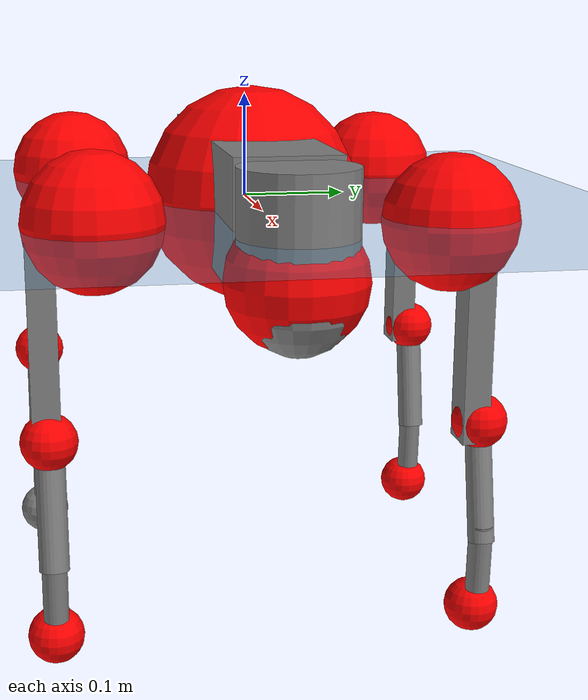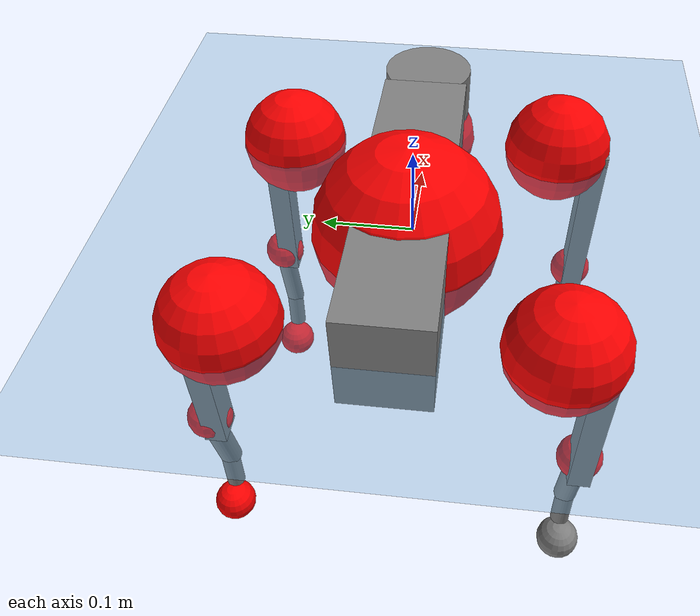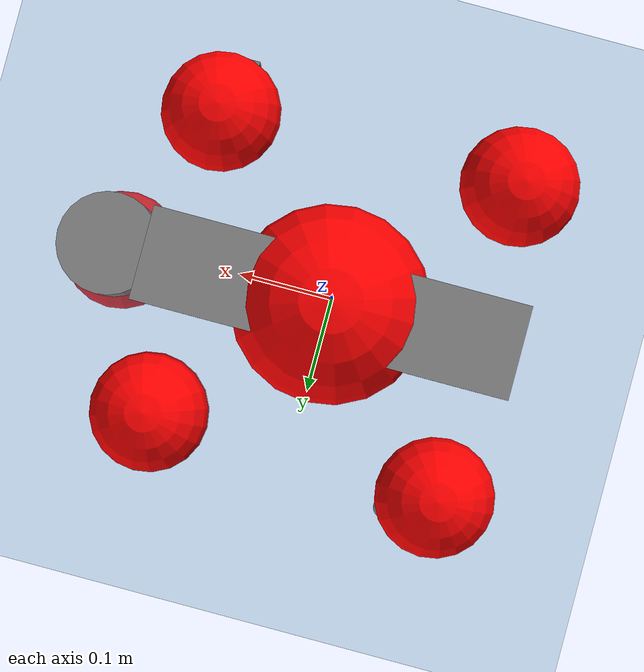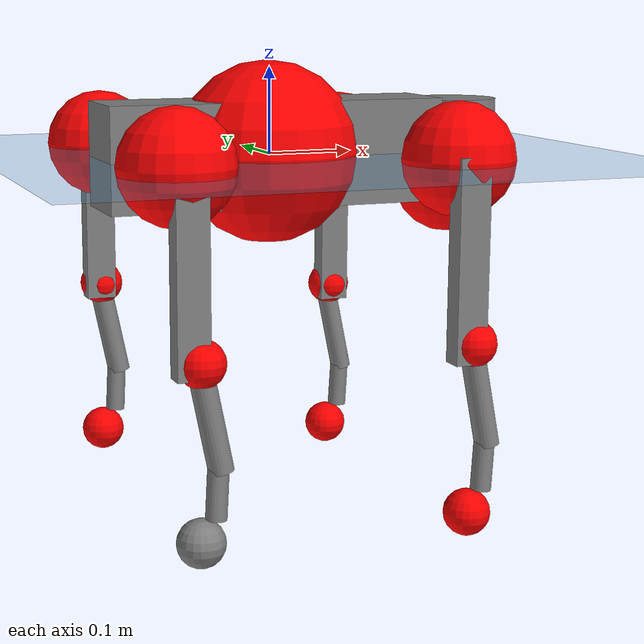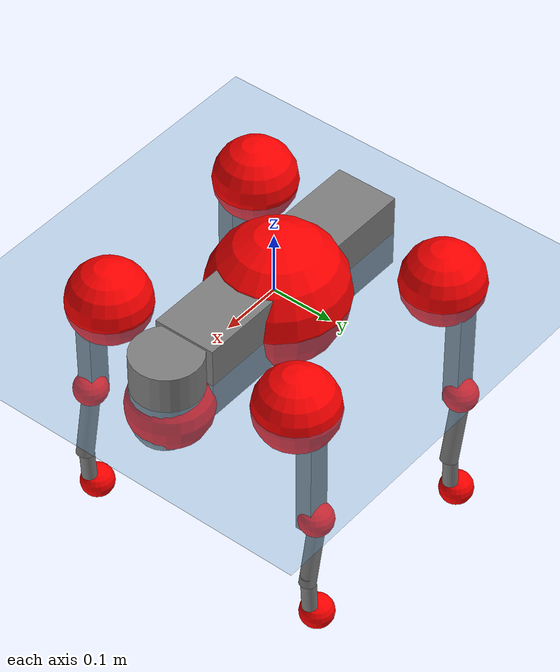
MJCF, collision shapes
<mujoco model="go2">
  <compiler angle="radian" assetdir="assets" balanceinertia="true" inertiafromgeom="false"/>

  <option timestep="0.005" density="1.2" viscosity="2e-05"/>

  <size nkey="1"/>

  <visual>
    <quality shadowsize="8192"/>
    <map shadowclip="0.5"/>
  </visual>

  <default>
    <default class="/">
      <geom contype="0" conaffinity="0" group="1" solref="-1000 -80"/>
      <site size="0.01 0.005 0.005" group="5"/>
      <general forcelimited="true" biastype="affine" gainprm="20" biasprm="0 -20 -0.5"/>
      <default class="go2">
        <joint armature="0.01" damping="0.01" frictionloss="0.2"/>
        <geom condim="1" margin="0.001"/>
        <default class="visual">
          <geom type="mesh" group="2"/>
        </default>
        <default class="collision">
          <geom group="3"/>
          <default class="foot">
            <geom size="0.022 0 0" condim="6" priority="1" friction="0.8 0.02 0.01" solimp="0.015 1 0.022"/>
          </default>
        </default>
        <default class="reward_collision_sphere">
          <geom group="5" rgba="1 0 0 1"/>
        </default>
      </default>
    </default>
  </default>

  <asset>
    <texture type="skybox" colorspace="auto" name="//unnamed_texture_0" builtin="gradient" rgb1="0.95 0.95 0.95" rgb2="0.95 0.95 0.95" width="100" height="600"/>
    <texture type="2d" colorspace="auto" name="texplane" builtin="checker" rgb1="0.345 0.575 0.748" rgb2="0.345 0.575 0.748" markrgb="1 1 1" width="512" height="512"/>
    <material name="MatPlane" class="/" texture="texplane" texuniform="true" texrepeat="2 2" specular="0.9"/>
    <material name="metal" class="/" rgba="0.9 0.95 0.95 1"/>
    <material name="black" class="/" rgba="0 0 0 1"/>
    <material name="white" class="/"/>
    <material name="gray" class="/" rgba="0.671705 0.692426 0.77427 1"/>
    <mesh name="base_0" class="/" file="base_0.obj"/>
    <mesh name="base_1" class="/" file="base_1.obj"/>
    <mesh name="base_2" class="/" file="base_2.obj"/>
    <mesh name="base_3" class="/" file="base_3.obj"/>
    <mesh name="base_4" class="/" file="base_4.obj"/>
    <mesh name="hip_0" class="/" file="hip_0.obj"/>
    <mesh name="hip_1" class="/" file="hip_1.obj"/>
    <mesh name="thigh_0" class="/" file="thigh_0.obj"/>
    <mesh name="thigh_1" class="/" file="thigh_1.obj"/>
    <mesh name="thigh_mirror_0" class="/" file="thigh_mirror_0.obj"/>
    <mesh name="thigh_mirror_1" class="/" file="thigh_mirror_1.obj"/>
    <mesh name="calf_0" class="/" file="calf_0.obj"/>
    <mesh name="calf_1" class="/" file="calf_1.obj"/>
    <mesh name="calf_mirror_0" class="/" file="calf_mirror_0.obj"/>
    <mesh name="calf_mirror_1" class="/" file="calf_mirror_1.obj"/>
    <mesh name="foot" class="/" file="foot.obj"/>
  </asset>

  <worldbody>
    <geom name="floor" class="/" size="100 100 0.125" type="plane" group="0" material="MatPlane"/>
    <light name="toplight_shadow" class="/" pos="0 0 5" dir="0.0990148 0.0990148 -0.990148" type="directional" ambient="0.04 0.04 0.04" diffuse="0.55 0.55 0.55" specular="0.12 0.12 0.12"/>
    <light name="toplight_fill" class="/" pos="0 0 5" dir="0.0990148 0.0990148 -0.990148" type="directional" castshadow="false" ambient="0.04 0.04 0.04" diffuse="0.3 0.3 0.3" specular="0.08 0.08 0.08"/>
    <body name="trunk" childclass="go2" pos="-0.00048294 0.00617486 0.00183606" quat="1 0.000118823 -2.12437e-05 6.4438e-05">
      <inertial pos="0.0168473 0.00687327 -0.00509489" quat="0.0441922 0.69205 -0.00896795 0.72044" mass="8.43184" diaginertia="0.0427518 0.639844 0.0148575"/>
      <joint name="//unnamed_joint_0" type="free" armature="0" damping="0" frictionloss="0"/>
      <geom name="//unnamed_geom_1" class="visual" material="black" mesh="base_0"/>
      <geom name="//unnamed_geom_2" class="visual" material="black" mesh="base_1"/>
      <geom name="//unnamed_geom_3" class="visual" material="black" mesh="base_2"/>
      <geom name="//unnamed_geom_4" class="visual" material="white" mesh="base_3"/>
      <geom name="//unnamed_geom_5" class="visual" material="gray" mesh="base_4"/>
      <geom name="trunk_1" class="collision" size="0.199542 0.0495938 0.0604674" type="box"/>
      <geom name="trunk_2" class="collision" size="0.0530415 0.0477374" pos="0.235573 0 0.00904338" type="cylinder"/>
      <geom name="trunk_3" class="collision" size="0.049859" pos="0.242186 0 -0.0542603"/>
      <geom name="//unnamed_geom_9" class="reward_collision_sphere" size="0.106083"/>
      <geom name="//unnamed_geom_10" class="reward_collision_sphere" size="0.0636498" pos="0.231441 0 -0.0406952"/>
      <site name="imu" pos="-0.0503733 -0.0177744 0.0690671" size="0.0106083"/>
      <camera name="track" pos="0 -2.90316 0" quat="0.707107 0.707107 0 0" mode="trackcom"/>
      <camera name="ego_camera" pos="0.257891 0 0.0406952" quat="-0.5 -0.5 0.5 0.5"/>
      <body name="FL_hip" pos="0.155211 0.0571222 -0.00840437" quat="0.999995 0.00283733 0.00119841 -0.0011851">
        <inertial pos="-0.00556945 0.00299735 -0.00311309" quat="0.498051 0.505929 0.50181 0.494134" mass="0.852956" diaginertia="0.000339821 0.00418678 0.000283467"/>
        <joint name="FL_hip_joint" pos="0 0 0" axis="0.999998 0.00165241 -0.000893835" range="-1.26026 0.985105" armature="0.00986615" damping="0.0382543" frictionloss="0.161301"/>
        <geom name="//unnamed_geom_11" class="visual" material="metal" mesh="hip_0"/>
        <geom name="//unnamed_geom_12" class="visual" material="gray" mesh="hip_1"/>
        <geom name="//unnamed_geom_13" class="collision" size="0.0487982 0.0212166" pos="0 0.116126 0" quat="0.707107 0.707107 0 0" type="cylinder"/>
        <geom name="//unnamed_geom_14" class="reward_collision_sphere" size="0.0636498" pos="0 0.101611 0"/>
        <body name="FL_thigh" pos="0.00178936 0.128224 -0.00096047" quat="0.999996 -0.000352648 0.0010234 0.00241697">
          <inertial pos="-0.00833636 -0.0363491 -0.0282403" quat="0.817214 0.058933 -0.0334612 0.572337" mass="1.37446" diaginertia="0.00240195 0.0382909 0.000547003"/>
          <joint name="FL_thigh_joint" pos="0 0 0" axis="-0.0288599 0.999476 -0.0146758" range="-1.62119 3.31519" armature="0.00701945" damping="0.0147189" frictionloss="0.198603"/>
          <geom name="//unnamed_geom_15" class="visual" material="metal" mesh="thigh_0"/>
          <geom name="//unnamed_geom_16" class="visual" material="gray" mesh="thigh_1"/>
          <geom name="//unnamed_geom_17" class="collision" size="0.112978 0.0129952 0.0180341" pos="0 0 -0.096312" quat="0.707107 0 0.707107 0" type="box"/>
          <body name="FL_calf" pos="0.000409581 0.00861641 -0.191448" quat="0.999999 0.000987477 0.000713217 -0.000981158">
            <inertial pos="0.000652997 -0.00081928 -0.11796" quat="0.710171 0.00248564 -0.00621702 0.703997" mass="0.28448" diaginertia="0.000622358 0.00841719 3.62032e-05"/>
            <joint name="FL_calf_joint" pos="0 0 0" axis="-0.00473851 0.999965 -0.00687904" range="-2.52945 -0.816796" armature="0.0128433" damping="0.00686373" frictionloss="0.216479"/>
            <geom name="//unnamed_geom_18" class="visual" material="gray" mesh="calf_0"/>
            <geom name="//unnamed_geom_19" class="visual" material="black" mesh="calf_1"/>
            <geom name="FL_calf0" class="collision" size="0.01273 0.0636498" pos="0.00661259 0 -0.0542603" quat="0.994493 0 -0.104807 0" type="cylinder"/>
            <geom name="//unnamed_geom_21" class="collision" size="0.0116691 0.034477" pos="0.0165315 0 -0.133842" quat="0.999688 0 0.0249974 0" type="cylinder"/>
            <geom name="//unnamed_geom_22" class="visual" pos="0 0 -0.192624" quat="1 0 0 0" material="black" mesh="foot"/>
            <geom name="FL_foot" class="foot" size="0.0236863" pos="-0.00165315 0 -0.192624"/>
            <geom name="//unnamed_geom_24" class="reward_collision_sphere" size="0.0265208"/>
            <geom name="//unnamed_geom_25" class="reward_collision_sphere" size="0.0265208" pos="-0.00165315 0 -0.192624"/>
            <site name="FL_foot" class="foot" pos="-0.00165315 0 -0.192624" size="0.0106083"/>
          </body>
        </body>
      </body>
      <body name="FR_hip" pos="0.163647 -0.0647898 0.00251522" quat="0.999999 0.000925971 0.00068905 0.00047009">
        <inertial pos="-0.00325452 -0.00216054 8.47156e-06" quat="0.49223 0.510134 0.503864 0.493553" mass="0.907871" diaginertia="0.000351145 0.0044579 0.000272884"/>
        <joint name="FR_hip_joint" pos="0 0 0" axis="0.999728 0.0231218 -0.00307104" stiffness="0.0081246" range="-1.05236 1.0029" armature="0.0105152" damping="0.00657523" frictionloss="0.201529"/>
        <geom name="//unnamed_geom_26" class="visual" pos="0 4.76736e-09 2.04482e-07" quat="4.63268e-05 1 0 0" material="metal" mesh="hip_0"/>
        <geom name="//unnamed_geom_27" class="visual" pos="0 7.72846e-09 -5.05762e-07" quat="4.63268e-05 1 0 0" material="gray" mesh="hip_1"/>
        <geom name="//unnamed_geom_28" class="collision" size="0.0487982 0.0212166" pos="0 -0.116126 0" quat="0.707107 0.707107 0 0" type="cylinder"/>
        <geom name="//unnamed_geom_29" class="reward_collision_sphere" size="0.0636498" pos="0 -0.101611 0"/>
        <body name="FR_thigh" pos="-0.00876306 -0.148831 -0.00981295" quat="0.999999 -0.000824603 0.000644618 0.000805634">
          <inertial pos="-0.000668311 0.0425217 -0.0313257" quat="0.536452 -0.0233124 0.0933023 0.838433" mass="1.17227" diaginertia="0.0021447 0.0341474 0.0004939"/>
          <joint name="FR_thigh_joint" pos="0 0 0" axis="0.00463552 -0.999989 -0.000353576" stiffness="0.00580809" range="-3.3109 1.56799" armature="0.0115615" damping="0.00840588" frictionloss="0.215196"/>
          <geom name="//unnamed_geom_30" class="visual" material="metal" mesh="thigh_mirror_0"/>
          <geom name="//unnamed_geom_31" class="visual" material="gray" mesh="thigh_mirror_1"/>
          <geom name="//unnamed_geom_32" class="collision" size="0.112978 0.0129952 0.0180341" pos="0 0 -0.096312" quat="0.707107 0 0.707107 0" type="box"/>
          <body name="FR_calf" pos="0.00900184 0.00186343 -0.188413" quat="0.999993 -0.000966521 0.00319523 0.0017153">
            <inertial pos="0.00384886 0.000638183 -0.132864" quat="0.701436 0.0148129 0.00808845 0.712532" mass="0.294173" diaginertia="0.000577486 0.00940992 3.18283e-05"/>
            <joint name="FR_calf_joint" pos="0 0 0" axis="0.017775 -0.998768 -0.0463286" stiffness="0.0277579" range="0.866115 2.76791" armature="0.0063189" damping="0" frictionloss="0.29022"/>
            <geom name="//unnamed_geom_33" class="visual" material="gray" mesh="calf_mirror_0"/>
            <geom name="//unnamed_geom_34" class="visual" material="black" mesh="calf_mirror_1"/>
            <geom name="FR_calf0" class="collision" size="0.0137908 0.0636498" pos="0.00826573 0 -0.0542603" quat="0.995004 0 -0.0998334 0" type="cylinder"/>
            <geom name="//unnamed_geom_36" class="collision" size="0.0116691 0.034477" pos="0.0165315 0 -0.133842" quat="0.999688 0 0.0249974 0" type="cylinder"/>
            <geom name="//unnamed_geom_37" class="visual" pos="0 0 -0.192624" quat="1 0 0 0" material="black" mesh="foot"/>
            <geom name="FR_foot" class="foot" size="0.02412" pos="-0.00165315 0 -0.192624"/>
            <geom name="//unnamed_geom_39" class="reward_collision_sphere" size="0.0265208"/>
            <geom name="//unnamed_geom_40" class="reward_collision_sphere" size="0.0265208" pos="-0.00165315 0 -0.192624"/>
            <site name="FR_foot" class="foot" pos="-0.00165315 0 -0.192624" size="0.0106083"/>
          </body>
        </body>
      </body>
      <body name="RL_hip" pos="-0.157883 0.0660785 0.000443013" quat="1 0.000217528 0.000438315 0.000283193">
        <inertial pos="0.00467247 0.00968641 -0.00347687" quat="0.504578 0.499363 0.49696 0.499068" mass="0.787501" diaginertia="0.000333288 0.00373774 0.000280989"/>
        <joint name="RL_hip_joint" pos="0 0 0" axis="-0.999816 -0.00687261 -0.0179026" range="-1.03802 1.08281" armature="0.010228" damping="0.00588422" frictionloss="0.221502"/>
        <geom name="//unnamed_geom_41" class="visual" pos="6.7745e-10 0 1.32796e-07" quat="4.63268e-05 0 1 0" material="metal" mesh="hip_0"/>
        <geom name="//unnamed_geom_42" class="visual" pos="1.09823e-09 0 1.17771e-07" quat="4.63268e-05 0 1 0" material="gray" mesh="hip_1"/>
        <geom name="//unnamed_geom_43" class="collision" size="0.0487982 0.0212166" pos="0 0.116126 0" quat="0.707107 0.707107 0 0" type="cylinder"/>
        <geom name="//unnamed_geom_44" class="reward_collision_sphere" size="0.0636498" pos="0 0.101611 0"/>
        <body name="RL_thigh" pos="0.00437463 0.138182 0.00954494" quat="1 -0.000292842 -0.000211154 -4.15233e-05">
          <inertial pos="-0.002559 -0.0341832 -0.0204879" quat="0.828593 0.0976295 -0.00673206 0.551232" mass="1.17543" diaginertia="0.00225761 0.0361961 0.000511059"/>
          <joint name="RL_thigh_joint" pos="0 0 0" axis="0.0222154 0.999728 0.00713261" range="-0.401515 4.45455" armature="0.0112837" damping="0.0418696" frictionloss="0.193243"/>
          <geom name="//unnamed_geom_45" class="visual" material="metal" mesh="thigh_0"/>
          <geom name="//unnamed_geom_46" class="visual" material="gray" mesh="thigh_1"/>
          <geom name="//unnamed_geom_47" class="collision" size="0.112978 0.0129952 0.0180341" pos="0 0 -0.096312" quat="0.707107 0 0.707107 0" type="box"/>
          <body name="RL_calf" pos="0.00499625 0.0103898 -0.193439" quat="1 -5.46479e-05 -3.62325e-05 7.60851e-05">
            <inertial pos="0.0032985 -6.81022e-05 -0.129455" quat="0.713447 -0.00697459 -0.00310127 0.700668" mass="0.259836" diaginertia="0.000494296 0.00875107 3.03813e-05"/>
            <joint name="RL_calf_joint" pos="0 0 0" axis="0.0128735 0.999666 0.0224288" range="-2.92239 -0.718393" armature="0.0114708" damping="0.031583" frictionloss="0.198231"/>
            <geom name="//unnamed_geom_48" class="visual" material="gray" mesh="calf_0"/>
            <geom name="//unnamed_geom_49" class="visual" material="black" mesh="calf_1"/>
            <geom name="RL_calf0" class="collision" size="0.0137908 0.0636498" pos="0.00826573 0 -0.0542603" quat="0.995004 0 -0.0998334 0" type="cylinder"/>
            <geom name="//unnamed_geom_51" class="collision" size="0.0116691 0.034477" pos="0.0165315 0 -0.133842" quat="0.999688 0 0.0249974 0" type="cylinder"/>
            <geom name="//unnamed_geom_52" class="visual" pos="0 0 -0.192624" quat="1 0 0 0" material="black" mesh="foot"/>
            <geom name="RL_foot" class="foot" size="0.0216785" pos="-0.00165315 0 -0.192624"/>
            <geom name="//unnamed_geom_54" class="reward_collision_sphere" size="0.0265208"/>
            <geom name="//unnamed_geom_55" class="reward_collision_sphere" size="0.0265208" pos="-0.00165315 0 -0.192624"/>
            <site name="RL_foot" class="foot" pos="-0.00165315 0 -0.192624" size="0.0106083"/>
          </body>
        </body>
      </body>
      <body name="RR_hip" pos="-0.160819 -0.0690464 0.00529484" quat="0.999993 -0.00125537 -0.00122612 0.0032582">
        <inertial pos="0.00441029 -0.0100858 0.00451554" quat="0.499127 0.497761 0.497257 0.505807" mass="0.790758" diaginertia="0.000301683 0.00360784 0.000247299"/>
        <joint name="RR_hip_joint" pos="0 0 0" axis="-0.999212 0.0224662 0.0327165" range="-1.07961 1.21788" armature="0.0108142" damping="0.0130631" frictionloss="0.230502"/>
        <geom name="//unnamed_geom_56" class="visual" pos="-6.55812e-10 4.76736e-09 -7.1686e-08" quat="2.14617e-09 4.63268e-05 4.63268e-05 -1" material="metal" mesh="hip_0"/>
        <geom name="//unnamed_geom_57" class="visual" pos="-1.15175e-09 7.72846e-09 6.23533e-07" quat="2.14617e-09 4.63268e-05 4.63268e-05 -1" material="gray" mesh="hip_1"/>
        <geom name="//unnamed_geom_58" class="collision" size="0.0487982 0.0212166" pos="0 -0.116126 0" quat="0.707107 0.707107 0 0" type="cylinder"/>
        <geom name="//unnamed_geom_59" class="reward_collision_sphere" size="0.0636498" pos="0 -0.101611 0"/>
        <body name="RR_thigh" pos="-0.000171799 -0.144049 -0.00417895" quat="0.999992 -0.00203476 0.00208827 -0.00275258">
          <inertial pos="-0.00329164 0.040677 -0.0334751" quat="0.553659 -0.0184204 0.0851648 0.828172" mass="1.47665" diaginertia="0.00246391 0.0403554 0.000559676"/>
          <joint name="RR_thigh_joint" pos="0 0 0" axis="-0.0459928 -0.998937 -0.00301056" stiffness="0.00650535" range="-4.51349 0.454793" armature="0.00964146" damping="0.0198252" frictionloss="0.223177"/>
          <geom name="//unnamed_geom_60" class="visual" material="metal" mesh="thigh_mirror_0"/>
          <geom name="//unnamed_geom_61" class="visual" material="gray" mesh="thigh_mirror_1"/>
          <geom name="//unnamed_geom_62" class="collision" size="0.112978 0.0129952 0.0180341" pos="0 0 -0.096312" quat="0.707107 0 0.707107 0" type="box"/>
          <body name="RR_calf" pos="0.0111723 -0.000196868 -0.193894" quat="0.999999 -0.000173672 0.000927371 -0.000737511">
            <inertial pos="-0.00551331 0.000687843 -0.127811" quat="0.702608 -0.00308602 0.00827217 0.711522" mass="0.285634" diaginertia="0.000522397 0.00961914 3.29527e-05"/>
            <joint name="RR_calf_joint" pos="0 0 0" axis="-0.0431667 -0.998936 -0.0162255" stiffness="0.0161532" range="0.979584 2.54865" armature="0.0151005" damping="0" frictionloss="0.223314"/>
            <geom name="//unnamed_geom_63" class="visual" material="gray" mesh="calf_mirror_0"/>
            <geom name="//unnamed_geom_64" class="visual" material="black" mesh="calf_mirror_1"/>
            <geom name="RR_calf0" class="collision" size="0.0137908 0.0636498" pos="0.00826573 0 -0.0542603" quat="0.995004 0 -0.0998334 0" type="cylinder"/>
            <geom name="//unnamed_geom_66" class="collision" size="0.0116691 0.034477" pos="0.0165315 0 -0.133842" quat="0.999688 0 0.0249974 0" type="cylinder"/>
            <geom name="//unnamed_geom_67" class="visual" pos="0 0 -0.192624" quat="1 0 0 0" material="black" mesh="foot"/>
            <geom name="RR_foot" class="foot" size="0.0267249" pos="-0.00165315 0 -0.192624"/>
            <geom name="//unnamed_geom_69" class="reward_collision_sphere" size="0.0265208"/>
            <geom name="//unnamed_geom_70" class="reward_collision_sphere" size="0.0265208" pos="-0.00165315 0 -0.192624"/>
            <site name="RR_foot" class="foot" pos="-0.00165315 0 -0.192624" size="0.0106083"/>
          </body>
        </body>
      </body>
    </body>
  </worldbody>

  <contact>
    <pair class="/" geom1="floor" geom2="FL_foot" name="//unnamed_contact_0"/>
    <pair class="/" geom1="floor" geom2="FR_foot" name="//unnamed_contact_1"/>
    <pair class="/" geom1="floor" geom2="RL_foot" name="//unnamed_contact_2"/>
    <pair class="/" geom1="floor" geom2="RR_foot" name="//unnamed_contact_3"/>
  </contact>

  <actuator>
    <general name="FL_hip" class="/" joint="FL_hip_joint" forcerange="-15.2462 15.2462" gainprm="16.5368" biasprm="0 -16.5368 -0.515509"/>
    <general name="FL_thigh" class="/" joint="FL_thigh_joint" forcerange="-29.6805 29.6805" gainprm="16.5368" biasprm="0 -16.5368 -0.515509"/>
    <general name="FL_calf" class="/" joint="FL_calf_joint" forcerange="-49.0083 49.0083" gainprm="16.5368" biasprm="0 -16.5368 -0.515509"/>
    <general name="FR_hip" class="/" joint="FR_hip_joint" forcerange="-16.7779 16.7779" gainprm="16.5368" biasprm="0 -16.5368 -0.515509"/>
    <general name="FR_thigh" class="/" joint="FR_thigh_joint" forcerange="-16.7428 16.7428" gainprm="16.5368" biasprm="0 -16.5368 -0.515509"/>
    <general name="FR_calf" class="/" joint="FR_calf_joint" forcerange="-39.5782 39.5782" gainprm="16.5368" biasprm="0 -16.5368 -0.515509"/>
    <general name="RL_hip" class="/" joint="RL_hip_joint" forcerange="-24.7589 24.7589" gainprm="16.5368" biasprm="0 -16.5368 -0.515509"/>
    <general name="RL_thigh" class="/" joint="RL_thigh_joint" forcerange="-26.7398 26.7398" gainprm="16.5368" biasprm="0 -16.5368 -0.515509"/>
    <general name="RL_calf" class="/" joint="RL_calf_joint" forcerange="-54.9922 54.9922" gainprm="16.5368" biasprm="0 -16.5368 -0.515509"/>
    <general name="RR_hip" class="/" joint="RR_hip_joint" forcerange="-34.2442 34.2442" gainprm="16.5368" biasprm="0 -16.5368 -0.515509"/>
    <general name="RR_thigh" class="/" joint="RR_thigh_joint" forcerange="-23.7529 23.7529" gainprm="16.5368" biasprm="0 -16.5368 -0.515509"/>
    <general name="RR_calf" class="/" joint="RR_calf_joint" forcerange="-49.3726 49.3726" gainprm="16.5368" biasprm="0 -16.5368 -0.515509"/>
  </actuator>

  <sensor>
    <gyro site="imu" name="imu_angular_velocity"/>
    <velocimeter site="imu" name="imu_linear_velocity"/>
    <framelinvel objtype="site" objname="FL_foot" name="FL_foot_global_linear_velocity"/>
    <framelinvel objtype="site" objname="FR_foot" name="FR_foot_global_linear_velocity"/>
    <framelinvel objtype="site" objname="RL_foot" name="RL_foot_global_linear_velocity"/>
    <framelinvel objtype="site" objname="RR_foot" name="RR_foot_global_linear_velocity"/>
  </sensor>

  <keyframe>
    <key name="home" qpos="0 0 0.325 1 0 0 0 0.1 0.8 -1.5 -0.1 -0.8 1.5 -0.1 0.8 -1.5 0.1 -0.8 1.5"/>
  </keyframe>
</mujoco>
